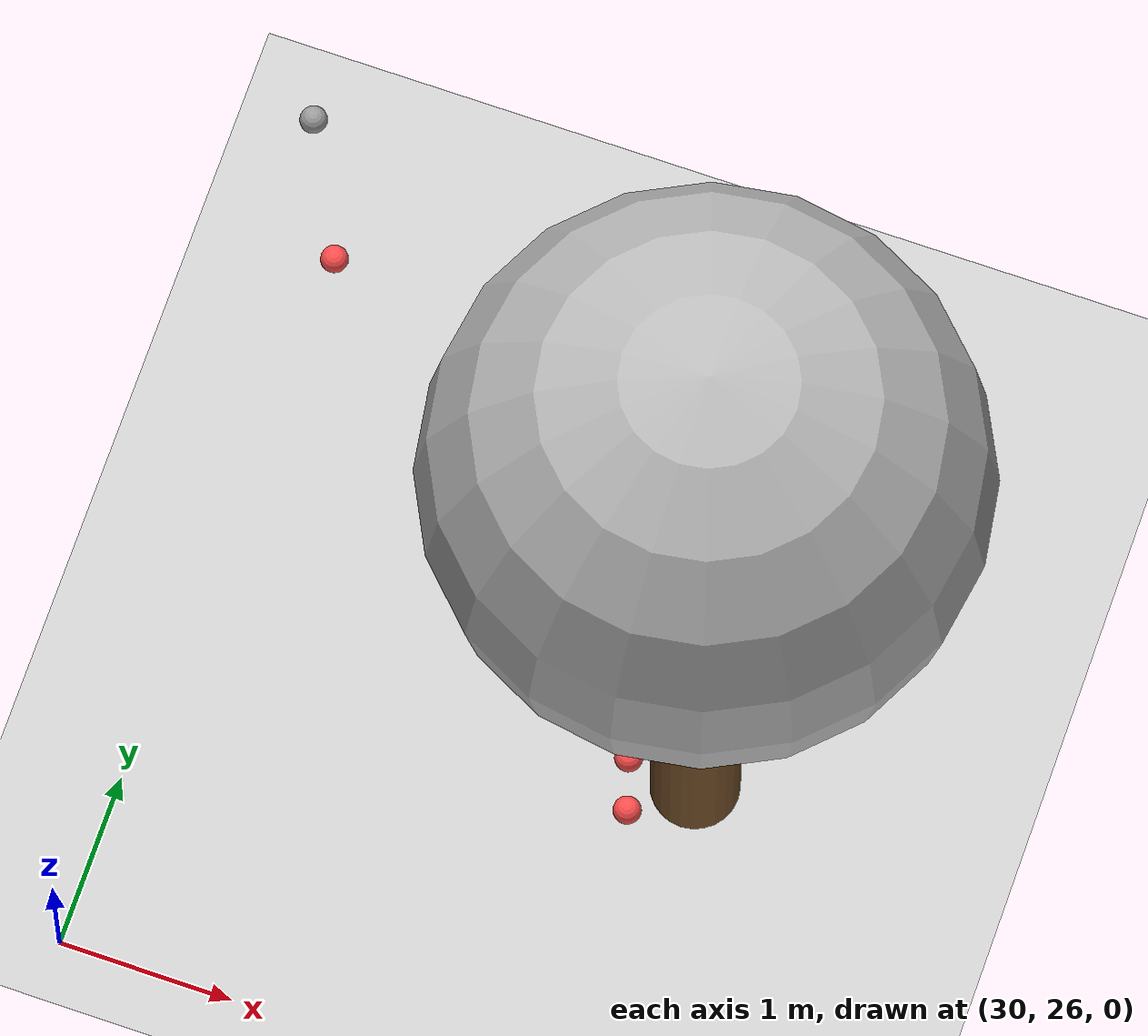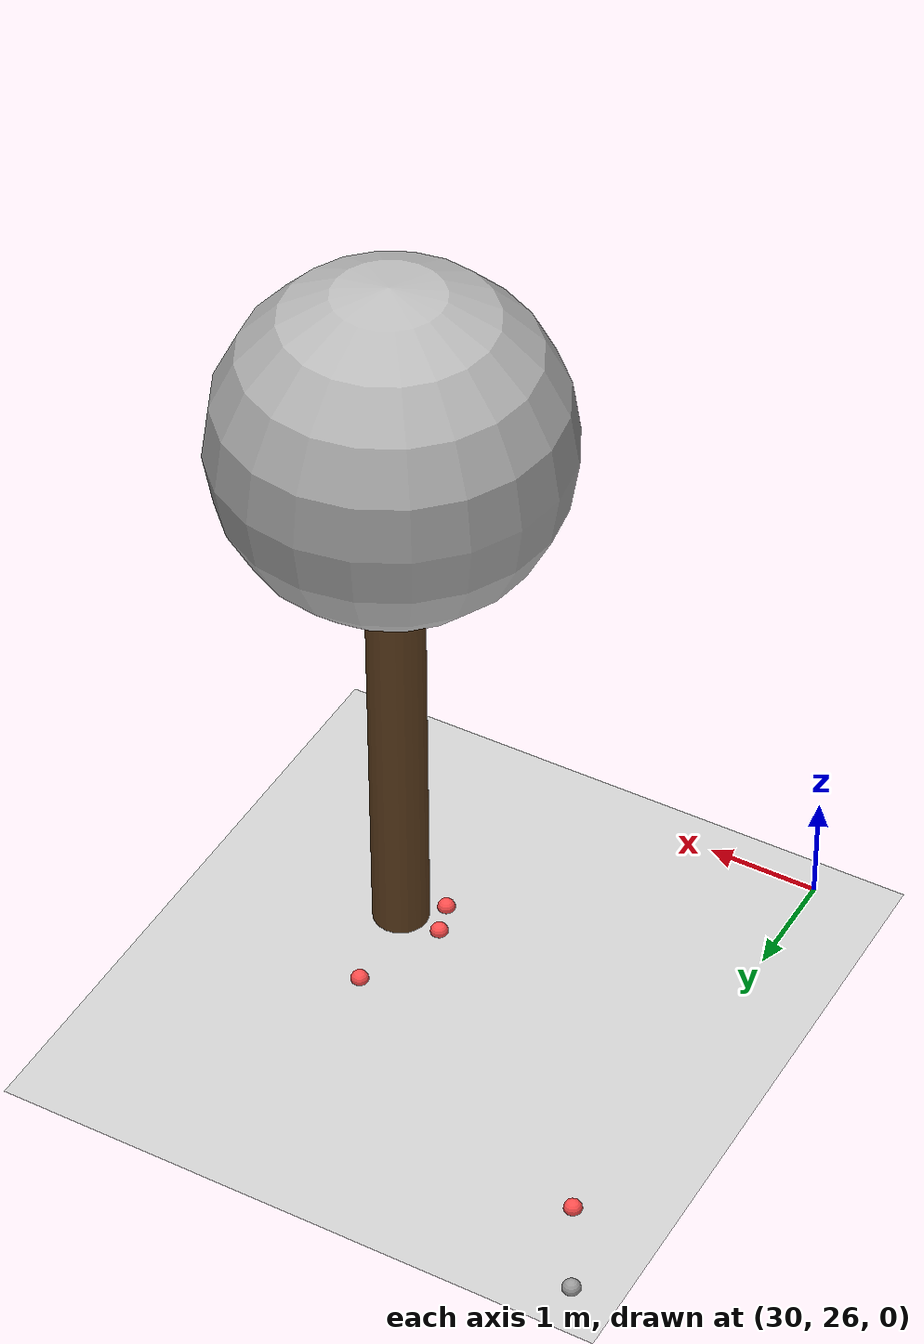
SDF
<sdf version="1.7">
 <world name="default">
  <model name="ground_plane">
   <static>1</static>
   <link name="link">
    <collision name="collision">
     <geometry><plane><normal>0 0 1</normal><size>100 100</size></plane></geometry>
     <surface>
      <contact><collide_bitmask>65535</collide_bitmask></contact>
      <friction><ode><mu>100</mu><mu2>50</mu2></ode></friction>
     </surface>
    </collision>
    <visual name="visual">
     <cast_shadows>0</cast_shadows>
     <geometry><plane><normal>0 0 1</normal><size>100 100</size></plane></geometry>
     <material>
      <script><uri>file://media/materials/scripts/gazebo.material</uri><name>Gazebo/Grey</name></script>
     </material>
    </visual>
   </link>
  </model>
  <model name="tree_simple_34">
   <static>1</static>
   <link name="link">
    <pose>0 0 0.1 0 -0 0</pose>
    <inertial>
     <mass>666</mass>
     <inertia>
      <ixx>0.0861167</ixx>
      <ixy>0</ixy>
      <ixz>0</ixz>
      <iyy>0.0861167</iyy>
      <iyz>0</iyz>
      <izz>0.0861167</izz>
     </inertia>
    </inertial>
    <collision name="collision_trunk">
     <pose>0 0 2 0 -0 0</pose>
     <geometry><cylinder><radius>0.25</radius><length>4</length></cylinder></geometry>
     <surface>
      <contact>
       <poissons_ratio>0.347</poissons_ratio>
       <elastic_modulus>8.8e+09</elastic_modulus>
       <ode><kp>100000</kp><kd>100</kd><max_vel>100</max_vel><min_depth>0.001</min_depth></ode>
      </contact>
      <friction>
       <torsional>
        <coefficient>1</coefficient>
        <use_patch_radius>0</use_patch_radius>
        <surface_radius>0.01</surface_radius>
       </torsional>
      </friction>
     </surface>
    </collision>
    <collision name="collision_treetop">
     <pose>0 0 5.2 0 -0 0</pose>
     <geometry><sphere><radius>1.5</radius></sphere></geometry>
     <surface>
      <contact>
       <poissons_ratio>0.347</poissons_ratio>
       <elastic_modulus>8.8e+09</elastic_modulus>
       <ode><kp>100000</kp><kd>100</kd><max_vel>100</max_vel><min_depth>0.001</min_depth></ode>
      </contact>
      <friction>
       <torsional>
        <coefficient>1</coefficient>
        <use_patch_radius>0</use_patch_radius>
        <surface_radius>0.01</surface_radius>
       </torsional>
      </friction>
     </surface>
    </collision>
    <visual name="trunk">
     <pose>0 0 2 0 -0 0</pose>
     <geometry><cylinder><radius>0.25</radius><length>4</length></cylinder></geometry>
     <material>
      <script>
       <uri>model://tree_simple/scripts</uri>
       <uri>model://tree_simple/materials/textures</uri>
       <name>TreeSimple/Trunk</name>
      </script>
     </material>
    </visual>
    <visual name="treetop">
     <pose>0 0 5.2 0 -0 0</pose>
     <geometry><sphere><radius>1.5</radius></sphere></geometry>
     <material>
      <script>
       <uri>model://tree_simple/scripts</uri>
       <uri>model://tree_simple/materials/textures</uri>
       <name>TreeSimple/Treetop</name>
      </script>
     </material>
    </visual>
   </link>
   <pose>33 28 -0.1 0 -0 0</pose>
  </model>
  <model name="seed_black_9">
   <link name="link">
    <inertial>
     <mass>1</mass>
     <inertia><ixx>0.1</ixx><ixy>0</ixy><ixz>0</ixz><iyy>0.1</iyy><iyz>0</iyz><izz>0.1</izz></inertia>
    </inertial>
    <visual name="visual">
     <geometry><sphere><radius>0.08</radius></sphere></geometry>
     <material>
      <script><name>Gazebo/Grey</name><uri>file://media/materials/scripts/gazebo.material</uri></script>
      <shader type="pixel"><normal_map>__default__</normal_map></shader>
      <ambient>0 0 0 1</ambient>
      <diffuse>0.7 0.7 0.7 1</diffuse>
      <specular>0.01 0.01 0.01 1</specular>
      <emissive>0 0 0 1</emissive>
     </material>
    </visual>
    <collision name="collision">
     <geometry><sphere><radius>0.0005</radius></sphere></geometry>
     <surface>
      <friction>
       <ode><mu>1</mu><mu2>1</mu2><fdir1>0 0 0</fdir1><slip1>0</slip1><slip2>0</slip2></ode>
       <torsional>
        <coefficient>1</coefficient>
        <patch_radius>0</patch_radius>
        <surface_radius>0</surface_radius>
        <use_patch_radius>1</use_patch_radius>
        <ode><slip>0</slip></ode>
       </torsional>
      </friction>
      <bounce><restitution_coefficient>0</restitution_coefficient><threshold>1e+06</threshold></bounce>
      <contact>
       <collide_without_contact>0</collide_without_contact>
       <collide_without_contact_bitmask>1</collide_without_contact_bitmask>
       <collide_bitmask>1</collide_bitmask>
       <ode>
        <soft_cfm>0</soft_cfm>
        <soft_erp>0.2</soft_erp>
        <kp>1e+13</kp>
        <kd>1</kd>
        <max_vel>0.01</max_vel>
        <min_depth>0</min_depth>
       </ode>
       <bullet>
        <split_impulse>1</split_impulse>
        <split_impulse_penetration_threshold>-0.01</split_impulse_penetration_threshold>
        <soft_cfm>0</soft_cfm>
        <soft_erp>0.2</soft_erp>
        <kp>1e+13</kp>
        <kd>1</kd>
       </bullet>
      </contact>
     </surface>
    </collision>
   </link>
   <static>0</static>
   <pose>29.7042 31.0067 0.0005 0 -0 0</pose>
  </model>
  <model name="seed_red_130">
   <link name="link">
    <inertial>
     <mass>1</mass>
     <inertia><ixx>0.1</ixx><ixy>0</ixy><ixz>0</ixz><iyy>0.1</iyy><iyz>0</iyz><izz>0.1</izz></inertia>
    </inertial>
    <visual name="visual">
     <geometry><sphere><radius>0.08</radius></sphere></geometry>
     <material>
      <script><name>Gazebo/Grey</name><uri>file://media/materials/scripts/gazebo.material</uri></script>
      <shader type="pixel"><normal_map>__default__</normal_map></shader>
      <ambient>1 0.3 0.3 1</ambient>
      <diffuse>0.7 0.7 0.7 1</diffuse>
      <specular>0.01 0.01 0.01 1</specular>
      <emissive>0 0 0 1</emissive>
     </material>
    </visual>
    <collision name="collision">
     <geometry><sphere><radius>0.0005</radius></sphere></geometry>
     <surface>
      <friction>
       <ode><mu>1</mu><mu2>1</mu2><fdir1>0 0 0</fdir1><slip1>0</slip1><slip2>0</slip2></ode>
       <torsional>
        <coefficient>1</coefficient>
        <patch_radius>0</patch_radius>
        <surface_radius>0</surface_radius>
        <use_patch_radius>1</use_patch_radius>
        <ode><slip>0</slip></ode>
       </torsional>
      </friction>
      <bounce><restitution_coefficient>0</restitution_coefficient><threshold>1e+06</threshold></bounce>
      <contact>
       <collide_without_contact>0</collide_without_contact>
       <collide_without_contact_bitmask>1</collide_without_contact_bitmask>
       <collide_bitmask>1</collide_bitmask>
       <ode>
        <soft_cfm>0</soft_cfm>
        <soft_erp>0.2</soft_erp>
        <kp>1e+13</kp>
        <kd>1</kd>
        <max_vel>0.01</max_vel>
        <min_depth>0</min_depth>
       </ode>
       <bullet>
        <split_impulse>1</split_impulse>
        <split_impulse_penetration_threshold>-0.01</split_impulse_penetration_threshold>
        <soft_cfm>0</soft_cfm>
        <soft_erp>0.2</soft_erp>
        <kp>1e+13</kp>
        <kd>1</kd>
       </bullet>
      </contact>
     </surface>
    </collision>
   </link>
   <static>0</static>
   <pose>30.0927 30.2599 0.0005 0 -0 0</pose>
  </model>
  <model name="seed_red_157">
   <link name="link">
    <inertial>
     <mass>1</mass>
     <inertia><ixx>0.1</ixx><ixy>0</ixy><ixz>0</ixz><iyy>0.1</iyy><iyz>0</iyz><izz>0.1</izz></inertia>
    </inertial>
    <visual name="visual">
     <geometry><sphere><radius>0.08</radius></sphere></geometry>
     <material>
      <script><name>Gazebo/Grey</name><uri>file://media/materials/scripts/gazebo.material</uri></script>
      <shader type="pixel"><normal_map>__default__</normal_map></shader>
      <ambient>1 0.3 0.3 1</ambient>
      <diffuse>0.7 0.7 0.7 1</diffuse>
      <specular>0.01 0.01 0.01 1</specular>
      <emissive>0 0 0 1</emissive>
     </material>
    </visual>
    <collision name="collision">
     <geometry><sphere><radius>0.0005</radius></sphere></geometry>
     <surface>
      <friction>
       <ode><mu>1</mu><mu2>1</mu2><fdir1>0 0 0</fdir1><slip1>0</slip1><slip2>0</slip2></ode>
       <torsional>
        <coefficient>1</coefficient>
        <patch_radius>0</patch_radius>
        <surface_radius>0</surface_radius>
        <use_patch_radius>1</use_patch_radius>
        <ode><slip>0</slip></ode>
       </torsional>
      </friction>
      <bounce><restitution_coefficient>0</restitution_coefficient><threshold>1e+06</threshold></bounce>
      <contact>
       <collide_without_contact>0</collide_without_contact>
       <collide_without_contact_bitmask>1</collide_without_contact_bitmask>
       <collide_bitmask>1</collide_bitmask>
       <ode>
        <soft_cfm>0</soft_cfm>
        <soft_erp>0.2</soft_erp>
        <kp>1e+13</kp>
        <kd>1</kd>
        <max_vel>0.01</max_vel>
        <min_depth>0</min_depth>
       </ode>
       <bullet>
        <split_impulse>1</split_impulse>
        <split_impulse_penetration_threshold>-0.01</split_impulse_penetration_threshold>
        <soft_cfm>0</soft_cfm>
        <soft_erp>0.2</soft_erp>
        <kp>1e+13</kp>
        <kd>1</kd>
       </bullet>
      </contact>
     </surface>
    </collision>
   </link>
   <static>0</static>
   <pose>32.6021 28.031 0.0005 0 -0 0</pose>
  </model>
  <model name="seed_red_160">
   <link name="link">
    <inertial>
     <mass>1</mass>
     <inertia><ixx>0.1</ixx><ixy>0</ixy><ixz>0</ixz><iyy>0.1</iyy><iyz>0</iyz><izz>0.1</izz></inertia>
    </inertial>
    <visual name="visual">
     <geometry><sphere><radius>0.08</radius></sphere></geometry>
     <material>
      <script><name>Gazebo/Grey</name><uri>file://media/materials/scripts/gazebo.material</uri></script>
      <shader type="pixel"><normal_map>__default__</normal_map></shader>
      <ambient>1 0.3 0.3 1</ambient>
      <diffuse>0.7 0.7 0.7 1</diffuse>
      <specular>0.01 0.01 0.01 1</specular>
      <emissive>0 0 0 1</emissive>
     </material>
    </visual>
    <collision name="collision">
     <geometry><sphere><radius>0.0005</radius></sphere></geometry>
     <surface>
      <friction>
       <ode><mu>1</mu><mu2>1</mu2><fdir1>0 0 0</fdir1><slip1>0</slip1><slip2>0</slip2></ode>
       <torsional>
        <coefficient>1</coefficient>
        <patch_radius>0</patch_radius>
        <surface_radius>0</surface_radius>
        <use_patch_radius>1</use_patch_radius>
        <ode><slip>0</slip></ode>
       </torsional>
      </friction>
      <bounce><restitution_coefficient>0</restitution_coefficient><threshold>1e+06</threshold></bounce>
      <contact>
       <collide_without_contact>0</collide_without_contact>
       <collide_without_contact_bitmask>1</collide_without_contact_bitmask>
       <collide_bitmask>1</collide_bitmask>
       <ode>
        <soft_cfm>0</soft_cfm>
        <soft_erp>0.2</soft_erp>
        <kp>1e+13</kp>
        <kd>1</kd>
        <max_vel>0.01</max_vel>
        <min_depth>0</min_depth>
       </ode>
       <bullet>
        <split_impulse>1</split_impulse>
        <split_impulse_penetration_threshold>-0.01</split_impulse_penetration_threshold>
        <soft_cfm>0</soft_cfm>
        <soft_erp>0.2</soft_erp>
        <kp>1e+13</kp>
        <kd>1</kd>
       </bullet>
      </contact>
     </surface>
    </collision>
   </link>
   <static>0</static>
   <pose>32.6932 27.7431 0.0005 0 -0 0</pose>
  </model>
  <model name="seed_red_161">
   <link name="link">
    <inertial>
     <mass>1</mass>
     <inertia><ixx>0.1</ixx><ixy>0</ixy><ixz>0</ixz><iyy>0.1</iyy><iyz>0</iyz><izz>0.1</izz></inertia>
    </inertial>
    <visual name="visual">
     <geometry><sphere><radius>0.08</radius></sphere></geometry>
     <material>
      <script><name>Gazebo/Grey</name><uri>file://media/materials/scripts/gazebo.material</uri></script>
      <shader type="pixel"><normal_map>__default__</normal_map></shader>
      <ambient>1 0.3 0.3 1</ambient>
      <diffuse>0.7 0.7 0.7 1</diffuse>
      <specular>0.01 0.01 0.01 1</specular>
      <emissive>0 0 0 1</emissive>
     </material>
    </visual>
    <collision name="collision">
     <geometry><sphere><radius>0.0005</radius></sphere></geometry>
     <surface>
      <friction>
       <ode><mu>1</mu><mu2>1</mu2><fdir1>0 0 0</fdir1><slip1>0</slip1><slip2>0</slip2></ode>
       <torsional>
        <coefficient>1</coefficient>
        <patch_radius>0</patch_radius>
        <surface_radius>0</surface_radius>
        <use_patch_radius>1</use_patch_radius>
        <ode><slip>0</slip></ode>
       </torsional>
      </friction>
      <bounce><restitution_coefficient>0</restitution_coefficient><threshold>1e+06</threshold></bounce>
      <contact>
       <collide_without_contact>0</collide_without_contact>
       <collide_without_contact_bitmask>1</collide_without_contact_bitmask>
       <collide_bitmask>1</collide_bitmask>
       <ode>
        <soft_cfm>0</soft_cfm>
        <soft_erp>0.2</soft_erp>
        <kp>1e+13</kp>
        <kd>1</kd>
        <max_vel>0.01</max_vel>
        <min_depth>0</min_depth>
       </ode>
       <bullet>
        <split_impulse>1</split_impulse>
        <split_impulse_penetration_threshold>-0.01</split_impulse_penetration_threshold>
        <soft_cfm>0</soft_cfm>
        <soft_erp>0.2</soft_erp>
        <kp>1e+13</kp>
        <kd>1</kd>
       </bullet>
      </contact>
     </surface>
    </collision>
   </link>
   <static>0</static>
   <pose>32.9104 28.8605 0.0005 0 -0 0</pose>
  </model>
 </world>
</sdf>
